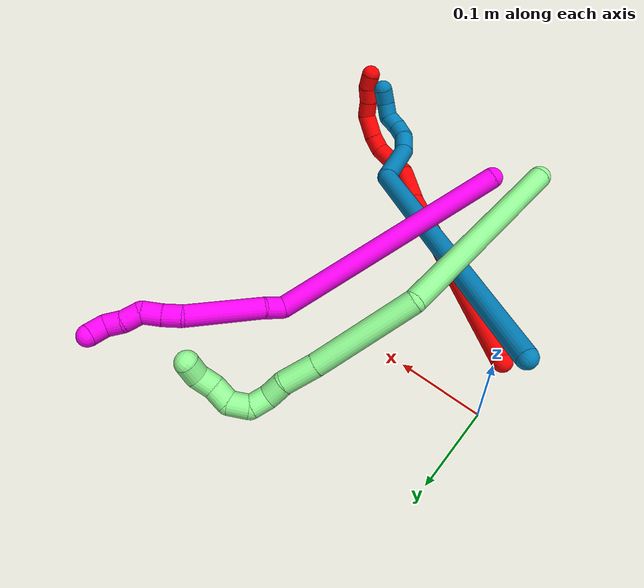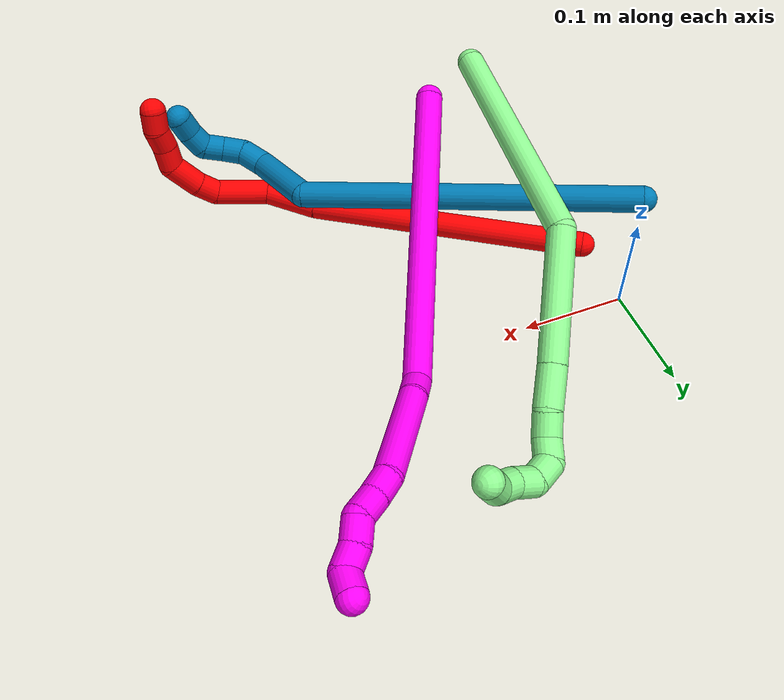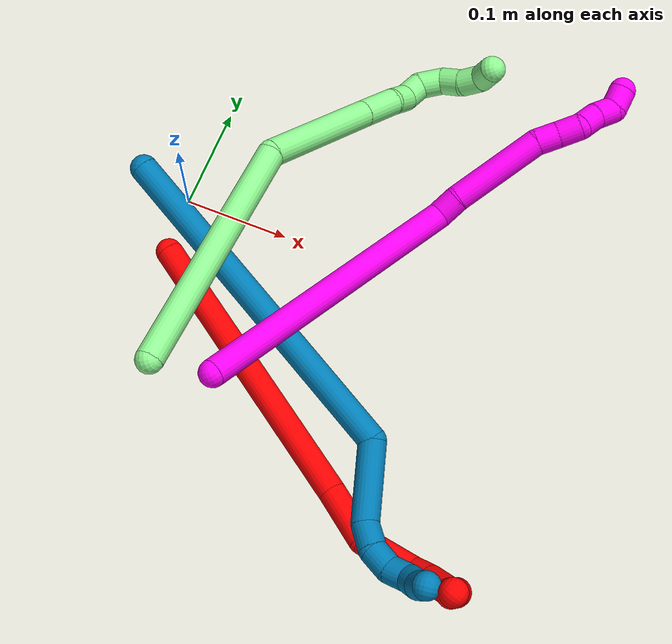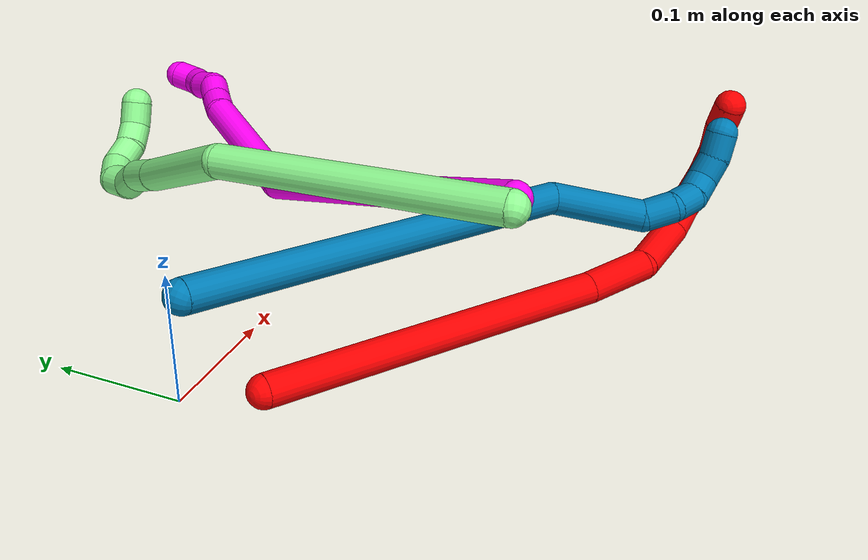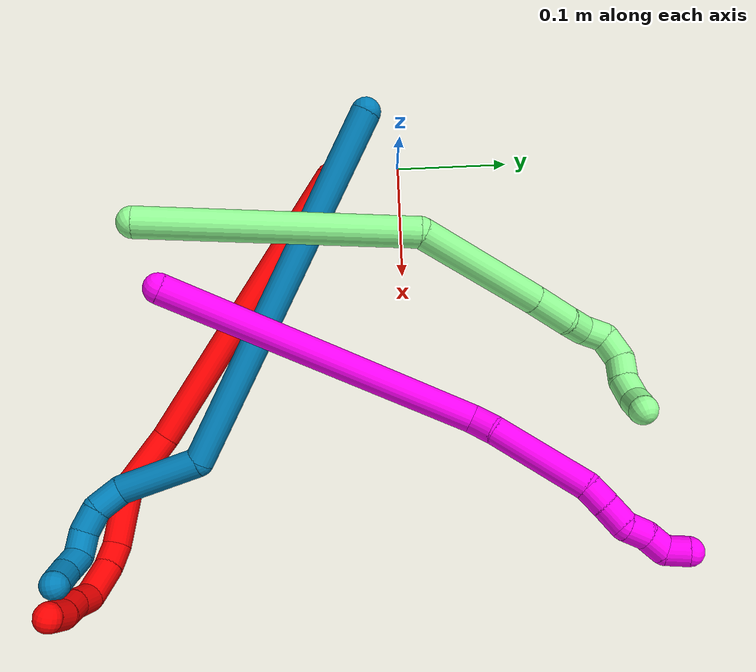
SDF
<sdf version="1.7">
 <world name="default">
  <model name="2">
   <static>0</static>
   <link name="2">
    <collision name="collision-cylinder-e_1_1_4">
     <pose>0.046267 0.005637 0.129977 -0.043342 0.341679 -0.007478</pose>
     <geometry><cylinder><radius>0.0125</radius><length>0.276161</length></cylinder></geometry>
     <surface>
      <friction><ode><mu>1.16</mu><mu2>1.16</mu2><slip1>0</slip1><slip2>0</slip2></ode></friction>
      <contact><ode><kp>1e+06</kp><kd>1</kd><max_vel>0</max_vel><min_depth>0.001</min_depth></ode></contact>
     </surface>
    </collision>
    <visual name="visual-cylinder-e_1_1_4">
     <pose>0.046267 0.005637 0.129977 -0.043342 0.341679 -0.007478</pose>
     <geometry><cylinder><radius>0.0125</radius><length>0.276161</length></cylinder></geometry>
     <material><ambient>1 0 0 1</ambient></material>
    </visual>
    <collision name="collision-cylinder-e_2_4_5">
     <pose>0.104665 0.009516 0.283589 0.074232 0.473089 0.017902</pose>
     <geometry><cylinder><radius>0.0125</radius><length>0.053252</length></cylinder></geometry>
     <surface>
      <friction><ode><mu>1.16</mu><mu2>1.16</mu2><slip1>0</slip1><slip2>0</slip2></ode></friction>
      <contact><ode><kp>1e+06</kp><kd>1</kd><max_vel>0</max_vel><min_depth>0.001</min_depth></ode></contact>
     </surface>
    </collision>
    <visual name="visual-cylinder-e_2_4_5">
     <pose>0.104665 0.009516 0.283589 0.074232 0.473089 0.017902</pose>
     <geometry><cylinder><radius>0.0125</radius><length>0.053252</length></cylinder></geometry>
     <material><ambient>1 0 0 1</ambient></material>
    </visual>
    <collision name="collision-cylinder-e_3_5_6">
     <pose>0.119041 -0.000747 0.332263 0.327464 0.084672 0.013997</pose>
     <geometry><cylinder><radius>0.0125</radius><length>0.053075</length></cylinder></geometry>
     <surface>
      <friction><ode><mu>1.16</mu><mu2>1.16</mu2><slip1>0</slip1><slip2>0</slip2></ode></friction>
      <contact><ode><kp>1e+06</kp><kd>1</kd><max_vel>0</max_vel><min_depth>0.001</min_depth></ode></contact>
     </surface>
    </collision>
    <visual name="visual-cylinder-e_3_5_6">
     <pose>0.119041 -0.000747 0.332263 0.327464 0.084672 0.013997</pose>
     <geometry><cylinder><radius>0.0125</radius><length>0.053075</length></cylinder></geometry>
     <material><ambient>1 0 0 1</ambient></material>
    </visual>
    <collision name="collision-cylinder-e_4_6_7">
     <pose>0.125128 -0.016306 0.364623 0.76668 0.361283 0.147042</pose>
     <geometry><cylinder><radius>0.0125</radius><length>0.021739</length></cylinder></geometry>
     <surface>
      <friction><ode><mu>1.16</mu><mu2>1.16</mu2><slip1>0</slip1><slip2>0</slip2></ode></friction>
      <contact><ode><kp>1e+06</kp><kd>1</kd><max_vel>0</max_vel><min_depth>0.001</min_depth></ode></contact>
     </surface>
    </collision>
    <visual name="visual-cylinder-e_4_6_7">
     <pose>0.125128 -0.016306 0.364623 0.76668 0.361283 0.147042</pose>
     <geometry><cylinder><radius>0.0125</radius><length>0.021739</length></cylinder></geometry>
     <material><ambient>1 0 0 1</ambient></material>
    </visual>
    <collision name="collision-cylinder-e_5_7_8">
     <pose>0.137245 -0.034048 0.381049 0.865352 0.532645 0.250675</pose>
     <geometry><cylinder><radius>0.0125</radius><length>0.032593</length></cylinder></geometry>
     <surface>
      <friction><ode><mu>1.16</mu><mu2>1.16</mu2><slip1>0</slip1><slip2>0</slip2></ode></friction>
      <contact><ode><kp>1e+06</kp><kd>1</kd><max_vel>0</max_vel><min_depth>0.001</min_depth></ode></contact>
     </surface>
    </collision>
    <visual name="visual-cylinder-e_5_7_8">
     <pose>0.137245 -0.034048 0.381049 0.865352 0.532645 0.250675</pose>
     <geometry><cylinder><radius>0.0125</radius><length>0.032593</length></cylinder></geometry>
     <material><ambient>1 0 0 1</ambient></material>
    </visual>
    <collision name="collision-cylinder-e_6_8_9">
     <pose>0.153248 -0.052638 0.389958 1.59524 0.774038 0.791276</pose>
     <geometry><cylinder><radius>0.0125</radius><length>0.022107</length></cylinder></geometry>
     <surface>
      <friction><ode><mu>1.16</mu><mu2>1.16</mu2><slip1>0</slip1><slip2>0</slip2></ode></friction>
      <contact><ode><kp>1e+06</kp><kd>1</kd><max_vel>0</max_vel><min_depth>0.001</min_depth></ode></contact>
     </surface>
    </collision>
    <visual name="visual-cylinder-e_6_8_9">
     <pose>0.153248 -0.052638 0.389958 1.59524 0.774038 0.791276</pose>
     <geometry><cylinder><radius>0.0125</radius><length>0.022107</length></cylinder></geometry>
     <material><ambient>1 0 0 1</ambient></material>
    </visual>
    <collision name="collision-cylinder-e_7_9_10">
     <pose>0.166589 -0.069429 0.390328 1.50752 0.562439 0.52957</pose>
     <geometry><cylinder><radius>0.0125</radius><length>0.021057</length></cylinder></geometry>
     <surface>
      <friction><ode><mu>1.16</mu><mu2>1.16</mu2><slip1>0</slip1><slip2>0</slip2></ode></friction>
      <contact><ode><kp>1e+06</kp><kd>1</kd><max_vel>0</max_vel><min_depth>0.001</min_depth></ode></contact>
     </surface>
    </collision>
    <visual name="visual-cylinder-e_7_9_10">
     <pose>0.166589 -0.069429 0.390328 1.50752 0.562439 0.52957</pose>
     <geometry><cylinder><radius>0.0125</radius><length>0.021057</length></cylinder></geometry>
     <material><ambient>1 0 0 1</ambient></material>
    </visual>
    <collision name="collision-cylinder-e_8_10_2">
     <pose>0.179356 -0.085121 0.389247 1.80785 0.796285 0.981454</pose>
     <geometry><cylinder><radius>0.0125</radius><length>0.020016</length></cylinder></geometry>
     <surface>
      <friction><ode><mu>1.16</mu><mu2>1.16</mu2><slip1>0</slip1><slip2>0</slip2></ode></friction>
      <contact><ode><kp>1e+06</kp><kd>1</kd><max_vel>0</max_vel><min_depth>0.001</min_depth></ode></contact>
     </surface>
    </collision>
    <visual name="visual-cylinder-e_8_10_2">
     <pose>0.179356 -0.085121 0.389247 1.80785 0.796285 0.981454</pose>
     <geometry><cylinder><radius>0.0125</radius><length>0.020016</length></cylinder></geometry>
     <material><ambient>1 0 0 1</ambient></material>
    </visual>
    <collision name="collision-sphere-2">
     <pose>0.186509 -0.091924 0.387604 0 -0 0</pose>
     <geometry><sphere><radius>0.0125</radius></sphere></geometry>
     <surface>
      <friction><ode><mu>1.16</mu><mu2>1.16</mu2><slip1>0</slip1><slip2>0</slip2></ode></friction>
      <contact><ode><kp>1e+06</kp><kd>1</kd><max_vel>0</max_vel><min_depth>0.001</min_depth></ode></contact>
     </surface>
    </collision>
    <visual name="visual-sphere-2">
     <pose>0.186509 -0.091924 0.387604 0 -0 0</pose>
     <geometry><sphere><radius>0.0125</radius></sphere></geometry>
     <material><ambient>1 0 0 1</ambient></material>
    </visual>
    <collision name="collision-sphere-10">
     <pose>0.172203 -0.078317 0.390891 0 -0 0</pose>
     <geometry><sphere><radius>0.0125</radius></sphere></geometry>
     <surface>
      <friction><ode><mu>1.16</mu><mu2>1.16</mu2><slip1>0</slip1><slip2>0</slip2></ode></friction>
      <contact><ode><kp>1e+06</kp><kd>1</kd><max_vel>0</max_vel><min_depth>0.001</min_depth></ode></contact>
     </surface>
    </collision>
    <visual name="visual-sphere-10">
     <pose>0.172203 -0.078317 0.390891 0 -0 0</pose>
     <geometry><sphere><radius>0.0125</radius></sphere></geometry>
     <material><ambient>1 0 0 1</ambient></material>
    </visual>
    <collision name="collision-sphere-9">
     <pose>0.160974 -0.06054 0.389765 0 -0 0</pose>
     <geometry><sphere><radius>0.0125</radius></sphere></geometry>
     <surface>
      <friction><ode><mu>1.16</mu><mu2>1.16</mu2><slip1>0</slip1><slip2>0</slip2></ode></friction>
      <contact><ode><kp>1e+06</kp><kd>1</kd><max_vel>0</max_vel><min_depth>0.001</min_depth></ode></contact>
     </surface>
    </collision>
    <visual name="visual-sphere-9">
     <pose>0.160974 -0.06054 0.389765 0 -0 0</pose>
     <geometry><sphere><radius>0.0125</radius></sphere></geometry>
     <material><ambient>1 0 0 1</ambient></material>
    </visual>
    <collision name="collision-sphere-4">
     <pose>0.092533 0.011274 0.259953 0 -0 0</pose>
     <geometry><sphere><radius>0.0125</radius></sphere></geometry>
     <surface>
      <friction><ode><mu>1.16</mu><mu2>1.16</mu2><slip1>0</slip1><slip2>0</slip2></ode></friction>
      <contact><ode><kp>1e+06</kp><kd>1</kd><max_vel>0</max_vel><min_depth>0.001</min_depth></ode></contact>
     </surface>
    </collision>
    <visual name="visual-sphere-4">
     <pose>0.092533 0.011274 0.259953 0 -0 0</pose>
     <geometry><sphere><radius>0.0125</radius></sphere></geometry>
     <material><ambient>1 0 0 1</ambient></material>
    </visual>
    <collision name="collision-sphere-1">
     <geometry><sphere><radius>0.0125</radius></sphere></geometry>
     <surface>
      <friction><ode><mu>1.16</mu><mu2>1.16</mu2><slip1>0</slip1><slip2>0</slip2></ode></friction>
      <contact><ode><kp>1e+06</kp><kd>1</kd><max_vel>0</max_vel><min_depth>0.001</min_depth></ode></contact>
     </surface>
    </collision>
    <visual name="visual-sphere-1">
     <geometry><sphere><radius>0.0125</radius></sphere></geometry>
     <material><ambient>1 0 0 1</ambient></material>
    </visual>
    <collision name="collision-sphere-8">
     <pose>0.145521 -0.044736 0.390151 0 -0 0</pose>
     <geometry><sphere><radius>0.0125</radius></sphere></geometry>
     <surface>
      <friction><ode><mu>1.16</mu><mu2>1.16</mu2><slip1>0</slip1><slip2>0</slip2></ode></friction>
      <contact><ode><kp>1e+06</kp><kd>1</kd><max_vel>0</max_vel><min_depth>0.001</min_depth></ode></contact>
     </surface>
    </collision>
    <visual name="visual-sphere-8">
     <pose>0.145521 -0.044736 0.390151 0 -0 0</pose>
     <geometry><sphere><radius>0.0125</radius></sphere></geometry>
     <material><ambient>1 0 0 1</ambient></material>
    </visual>
    <collision name="collision-sphere-5">
     <pose>0.116797 0.007758 0.307226 0 -0 0</pose>
     <geometry><sphere><radius>0.0125</radius></sphere></geometry>
     <surface>
      <friction><ode><mu>1.16</mu><mu2>1.16</mu2><slip1>0</slip1><slip2>0</slip2></ode></friction>
      <contact><ode><kp>1e+06</kp><kd>1</kd><max_vel>0</max_vel><min_depth>0.001</min_depth></ode></contact>
     </surface>
    </collision>
    <visual name="visual-sphere-5">
     <pose>0.116797 0.007758 0.307226 0 -0 0</pose>
     <geometry><sphere><radius>0.0125</radius></sphere></geometry>
     <material><ambient>1 0 0 1</ambient></material>
    </visual>
    <collision name="collision-sphere-6">
     <pose>0.121285 -0.009252 0.3573 0 -0 0</pose>
     <geometry><sphere><radius>0.0125</radius></sphere></geometry>
     <surface>
      <friction><ode><mu>1.16</mu><mu2>1.16</mu2><slip1>0</slip1><slip2>0</slip2></ode></friction>
      <contact><ode><kp>1e+06</kp><kd>1</kd><max_vel>0</max_vel><min_depth>0.001</min_depth></ode></contact>
     </surface>
    </collision>
    <visual name="visual-sphere-6">
     <pose>0.121285 -0.009252 0.3573 0 -0 0</pose>
     <geometry><sphere><radius>0.0125</radius></sphere></geometry>
     <material><ambient>1 0 0 1</ambient></material>
    </visual>
    <collision name="collision-sphere-7">
     <pose>0.12897 -0.02336 0.371946 0 -0 0</pose>
     <geometry><sphere><radius>0.0125</radius></sphere></geometry>
     <surface>
      <friction><ode><mu>1.16</mu><mu2>1.16</mu2><slip1>0</slip1><slip2>0</slip2></ode></friction>
      <contact><ode><kp>1e+06</kp><kd>1</kd><max_vel>0</max_vel><min_depth>0.001</min_depth></ode></contact>
     </surface>
    </collision>
    <visual name="visual-sphere-7">
     <pose>0.12897 -0.02336 0.371946 0 -0 0</pose>
     <geometry><sphere><radius>0.0125</radius></sphere></geometry>
     <material><ambient>1 0 0 1</ambient></material>
    </visual>
    <inertial>
     <pose>0.084696 -0.00754 0.227216 0 -0 0</pose>
     <mass>0.5</mass>
     <inertia>
      <ixx>0.001705</ixx>
      <ixy>0</ixy>
      <ixz>0</ixz>
      <iyy>0.001783</iyy>
      <iyz>0</iyz>
      <izz>-0.000634</izz>
     </inertia>
    </inertial>
   </link>
   <pose>0.010136 -0.062239 0.020366 -1.77056 -0.520572 -1.756</pose>
  </model>
  <model name="9">
   <static>0</static>
   <link name="9">
    <collision name="collision-cylinder-e_1_1_4">
     <pose>0.123806 -0.042574 0.092599 0.430943 0.882067 0.205901</pose>
     <geometry><cylinder><radius>0.0125</radius><length>0.320719</length></cylinder></geometry>
     <surface>
      <friction><ode><mu>1.16</mu><mu2>1.16</mu2><slip1>0</slip1><slip2>0</slip2></ode></friction>
      <contact><ode><kp>1e+06</kp><kd>1</kd><max_vel>0</max_vel><min_depth>0.001</min_depth></ode></contact>
     </surface>
    </collision>
    <visual name="visual-cylinder-e_1_1_4">
     <pose>0.123806 -0.042574 0.092599 0.430943 0.882067 0.205901</pose>
     <geometry><cylinder><radius>0.0125</radius><length>0.320719</length></cylinder></geometry>
     <material><ambient>0 0.490196 0.709804 1</ambient></material>
    </visual>
    <collision name="collision-cylinder-e_2_4_5">
     <pose>0.254922 -0.083877 0.220429 -0.036031 0.204447 -0.003697</pose>
     <geometry><cylinder><radius>0.0125</radius><length>0.072006</length></cylinder></geometry>
     <surface>
      <friction><ode><mu>1.16</mu><mu2>1.16</mu2><slip1>0</slip1><slip2>0</slip2></ode></friction>
      <contact><ode><kp>1e+06</kp><kd>1</kd><max_vel>0</max_vel><min_depth>0.001</min_depth></ode></contact>
     </surface>
    </collision>
    <visual name="visual-cylinder-e_2_4_5">
     <pose>0.254922 -0.083877 0.220429 -0.036031 0.204447 -0.003697</pose>
     <geometry><cylinder><radius>0.0125</radius><length>0.072006</length></cylinder></geometry>
     <material><ambient>0 0.490196 0.709804 1</ambient></material>
    </visual>
    <collision name="collision-cylinder-e_3_5_6">
     <pose>0.270082 -0.08011 0.265188 -0.256321 0.672854 -0.090074</pose>
     <geometry><cylinder><radius>0.0125</radius><length>0.025193</length></cylinder></geometry>
     <surface>
      <friction><ode><mu>1.16</mu><mu2>1.16</mu2><slip1>0</slip1><slip2>0</slip2></ode></friction>
      <contact><ode><kp>1e+06</kp><kd>1</kd><max_vel>0</max_vel><min_depth>0.001</min_depth></ode></contact>
     </surface>
    </collision>
    <visual name="visual-cylinder-e_3_5_6">
     <pose>0.270082 -0.08011 0.265188 -0.256321 0.672854 -0.090074</pose>
     <geometry><cylinder><radius>0.0125</radius><length>0.025193</length></cylinder></geometry>
     <material><ambient>0 0.490196 0.709804 1</ambient></material>
    </visual>
    <collision name="collision-cylinder-e_4_6_7">
     <pose>0.28703 -0.078588 0.280454 0.168399 1.00179 0.092346</pose>
     <geometry><cylinder><radius>0.0125</radius><length>0.0216</length></cylinder></geometry>
     <surface>
      <friction><ode><mu>1.16</mu><mu2>1.16</mu2><slip1>0</slip1><slip2>0</slip2></ode></friction>
      <contact><ode><kp>1e+06</kp><kd>1</kd><max_vel>0</max_vel><min_depth>0.001</min_depth></ode></contact>
     </surface>
    </collision>
    <visual name="visual-cylinder-e_4_6_7">
     <pose>0.28703 -0.078588 0.280454 0.168399 1.00179 0.092346</pose>
     <geometry><cylinder><radius>0.0125</radius><length>0.0216</length></cylinder></geometry>
     <material><ambient>0 0.490196 0.709804 1</ambient></material>
    </visual>
    <collision name="collision-cylinder-e_5_7_8">
     <pose>0.306251 -0.07948 0.287698 -0.055309 1.42273 -0.047674</pose>
     <geometry><cylinder><radius>0.0125</radius><length>0.020469</length></cylinder></geometry>
     <surface>
      <friction><ode><mu>1.16</mu><mu2>1.16</mu2><slip1>0</slip1><slip2>0</slip2></ode></friction>
      <contact><ode><kp>1e+06</kp><kd>1</kd><max_vel>0</max_vel><min_depth>0.001</min_depth></ode></contact>
     </surface>
    </collision>
    <visual name="visual-cylinder-e_5_7_8">
     <pose>0.306251 -0.07948 0.287698 -0.055309 1.42273 -0.047674</pose>
     <geometry><cylinder><radius>0.0125</radius><length>0.020469</length></cylinder></geometry>
     <material><ambient>0 0.490196 0.709804 1</ambient></material>
    </visual>
    <collision name="collision-cylinder-e_6_8_9">
     <pose>0.324048 -0.073107 0.290498 -1.36802 0.874187 -0.72794</pose>
     <geometry><cylinder><radius>0.0125</radius><length>0.020013</length></cylinder></geometry>
     <surface>
      <friction><ode><mu>1.16</mu><mu2>1.16</mu2><slip1>0</slip1><slip2>0</slip2></ode></friction>
      <contact><ode><kp>1e+06</kp><kd>1</kd><max_vel>0</max_vel><min_depth>0.001</min_depth></ode></contact>
     </surface>
    </collision>
    <visual name="visual-cylinder-e_6_8_9">
     <pose>0.324048 -0.073107 0.290498 -1.36802 0.874187 -0.72794</pose>
     <geometry><cylinder><radius>0.0125</radius><length>0.020013</length></cylinder></geometry>
     <material><ambient>0 0.490196 0.709804 1</ambient></material>
    </visual>
    <collision name="collision-cylinder-e_7_9_2">
     <pose>0.338532 -0.059584 0.290643 -1.72831 0.748923 -0.862855</pose>
     <geometry><cylinder><radius>0.0125</radius><length>0.020001</length></cylinder></geometry>
     <surface>
      <friction><ode><mu>1.16</mu><mu2>1.16</mu2><slip1>0</slip1><slip2>0</slip2></ode></friction>
      <contact><ode><kp>1e+06</kp><kd>1</kd><max_vel>0</max_vel><min_depth>0.001</min_depth></ode></contact>
     </surface>
    </collision>
    <visual name="visual-cylinder-e_7_9_2">
     <pose>0.338532 -0.059584 0.290643 -1.72831 0.748923 -0.862855</pose>
     <geometry><cylinder><radius>0.0125</radius><length>0.020001</length></cylinder></geometry>
     <material><ambient>0 0.490196 0.709804 1</ambient></material>
    </visual>
    <collision name="collision-sphere-2">
     <pose>0.345341 -0.05235 0.289494 0 -0 0</pose>
     <geometry><sphere><radius>0.0125</radius></sphere></geometry>
     <surface>
      <friction><ode><mu>1.16</mu><mu2>1.16</mu2><slip1>0</slip1><slip2>0</slip2></ode></friction>
      <contact><ode><kp>1e+06</kp><kd>1</kd><max_vel>0</max_vel><min_depth>0.001</min_depth></ode></contact>
     </surface>
    </collision>
    <visual name="visual-sphere-2">
     <pose>0.345341 -0.05235 0.289494 0 -0 0</pose>
     <geometry><sphere><radius>0.0125</radius></sphere></geometry>
     <material><ambient>0 0.490196 0.709804 1</ambient></material>
    </visual>
    <collision name="collision-sphere-9">
     <pose>0.331723 -0.066818 0.291791 0 -0 0</pose>
     <geometry><sphere><radius>0.0125</radius></sphere></geometry>
     <surface>
      <friction><ode><mu>1.16</mu><mu2>1.16</mu2><slip1>0</slip1><slip2>0</slip2></ode></friction>
      <contact><ode><kp>1e+06</kp><kd>1</kd><max_vel>0</max_vel><min_depth>0.001</min_depth></ode></contact>
     </surface>
    </collision>
    <visual name="visual-sphere-9">
     <pose>0.331723 -0.066818 0.291791 0 -0 0</pose>
     <geometry><sphere><radius>0.0125</radius></sphere></geometry>
     <material><ambient>0 0.490196 0.709804 1</ambient></material>
    </visual>
    <collision name="collision-sphere-4">
     <pose>0.247612 -0.085147 0.185199 0 -0 0</pose>
     <geometry><sphere><radius>0.0125</radius></sphere></geometry>
     <surface>
      <friction><ode><mu>1.16</mu><mu2>1.16</mu2><slip1>0</slip1><slip2>0</slip2></ode></friction>
      <contact><ode><kp>1e+06</kp><kd>1</kd><max_vel>0</max_vel><min_depth>0.001</min_depth></ode></contact>
     </surface>
    </collision>
    <visual name="visual-sphere-4">
     <pose>0.247612 -0.085147 0.185199 0 -0 0</pose>
     <geometry><sphere><radius>0.0125</radius></sphere></geometry>
     <material><ambient>0 0.490196 0.709804 1</ambient></material>
    </visual>
    <collision name="collision-sphere-1">
     <geometry><sphere><radius>0.0125</radius></sphere></geometry>
     <surface>
      <friction><ode><mu>1.16</mu><mu2>1.16</mu2><slip1>0</slip1><slip2>0</slip2></ode></friction>
      <contact><ode><kp>1e+06</kp><kd>1</kd><max_vel>0</max_vel><min_depth>0.001</min_depth></ode></contact>
     </surface>
    </collision>
    <visual name="visual-sphere-1">
     <geometry><sphere><radius>0.0125</radius></sphere></geometry>
     <material><ambient>0 0.490196 0.709804 1</ambient></material>
    </visual>
    <collision name="collision-sphere-8">
     <pose>0.316373 -0.079396 0.289205 0 -0 0</pose>
     <geometry><sphere><radius>0.0125</radius></sphere></geometry>
     <surface>
      <friction><ode><mu>1.16</mu><mu2>1.16</mu2><slip1>0</slip1><slip2>0</slip2></ode></friction>
      <contact><ode><kp>1e+06</kp><kd>1</kd><max_vel>0</max_vel><min_depth>0.001</min_depth></ode></contact>
     </surface>
    </collision>
    <visual name="visual-sphere-8">
     <pose>0.316373 -0.079396 0.289205 0 -0 0</pose>
     <geometry><sphere><radius>0.0125</radius></sphere></geometry>
     <material><ambient>0 0.490196 0.709804 1</ambient></material>
    </visual>
    <collision name="collision-sphere-5">
     <pose>0.262231 -0.082607 0.255659 0 -0 0</pose>
     <geometry><sphere><radius>0.0125</radius></sphere></geometry>
     <surface>
      <friction><ode><mu>1.16</mu><mu2>1.16</mu2><slip1>0</slip1><slip2>0</slip2></ode></friction>
      <contact><ode><kp>1e+06</kp><kd>1</kd><max_vel>0</max_vel><min_depth>0.001</min_depth></ode></contact>
     </surface>
    </collision>
    <visual name="visual-sphere-5">
     <pose>0.262231 -0.082607 0.255659 0 -0 0</pose>
     <geometry><sphere><radius>0.0125</radius></sphere></geometry>
     <material><ambient>0 0.490196 0.709804 1</ambient></material>
    </visual>
    <collision name="collision-sphere-6">
     <pose>0.277932 -0.077613 0.274717 0 -0 0</pose>
     <geometry><sphere><radius>0.0125</radius></sphere></geometry>
     <surface>
      <friction><ode><mu>1.16</mu><mu2>1.16</mu2><slip1>0</slip1><slip2>0</slip2></ode></friction>
      <contact><ode><kp>1e+06</kp><kd>1</kd><max_vel>0</max_vel><min_depth>0.001</min_depth></ode></contact>
     </surface>
    </collision>
    <visual name="visual-sphere-6">
     <pose>0.277932 -0.077613 0.274717 0 -0 0</pose>
     <geometry><sphere><radius>0.0125</radius></sphere></geometry>
     <material><ambient>0 0.490196 0.709804 1</ambient></material>
    </visual>
    <collision name="collision-sphere-7">
     <pose>0.296128 -0.079563 0.28619 0 -0 0</pose>
     <geometry><sphere><radius>0.0125</radius></sphere></geometry>
     <surface>
      <friction><ode><mu>1.16</mu><mu2>1.16</mu2><slip1>0</slip1><slip2>0</slip2></ode></friction>
      <contact><ode><kp>1e+06</kp><kd>1</kd><max_vel>0</max_vel><min_depth>0.001</min_depth></ode></contact>
     </surface>
    </collision>
    <visual name="visual-sphere-7">
     <pose>0.296128 -0.079563 0.28619 0 -0 0</pose>
     <geometry><sphere><radius>0.0125</radius></sphere></geometry>
     <material><ambient>0 0.490196 0.709804 1</ambient></material>
    </visual>
    <inertial>
     <pose>0.181183 -0.055382 0.15165 0 -0 0</pose>
     <mass>0.5</mass>
     <inertia>
      <ixx>0.00214</ixx>
      <ixy>0</ixy>
      <ixz>0</ixz>
      <iyy>0.003032</iyy>
      <iyz>0</iyz>
      <izz>-0.001393</izz>
     </inertia>
    </inertial>
   </link>
   <pose>-0.020995 -0.026947 0.103091 1.87149 -0.392721 0.000605</pose>
  </model>
  <model name="10">
   <static>0</static>
   <link name="10">
    <collision name="collision-cylinder-e_1_1_4">
     <pose>0.090521 0.10696 0.022066 -1.36735 0.69209 -0.571451</pose>
     <geometry><cylinder><radius>0.0125</radius><length>0.283701</length></cylinder></geometry>
     <surface>
      <friction><ode><mu>1.16</mu><mu2>1.16</mu2><slip1>0</slip1><slip2>0</slip2></ode></friction>
      <contact><ode><kp>1e+06</kp><kd>1</kd><max_vel>0</max_vel><min_depth>0.001</min_depth></ode></contact>
     </surface>
    </collision>
    <visual name="visual-cylinder-e_1_1_4">
     <pose>0.090521 0.10696 0.022066 -1.36735 0.69209 -0.571451</pose>
     <geometry><cylinder><radius>0.0125</radius><length>0.283701</length></cylinder></geometry>
     <material><ambient>1 0 0.964706 1</ambient></material>
    </visual>
    <collision name="collision-cylinder-e_2_4_5">
     <pose>0.182243 0.225189 0.040896 -1.8504 0.101997 -0.135314</pose>
     <geometry><cylinder><radius>0.0125</radius><length>0.023571</length></cylinder></geometry>
     <surface>
      <friction><ode><mu>1.16</mu><mu2>1.16</mu2><slip1>0</slip1><slip2>0</slip2></ode></friction>
      <contact><ode><kp>1e+06</kp><kd>1</kd><max_vel>0</max_vel><min_depth>0.001</min_depth></ode></contact>
     </surface>
    </collision>
    <visual name="visual-cylinder-e_2_4_5">
     <pose>0.182243 0.225189 0.040896 -1.8504 0.101997 -0.135314</pose>
     <geometry><cylinder><radius>0.0125</radius><length>0.023571</length></cylinder></geometry>
     <material><ambient>1 0 0.964706 1</ambient></material>
    </visual>
    <collision name="collision-cylinder-e_3_5_6">
     <pose>0.192579 0.27954 0.033392 -1.66956 0.207971 -0.229416</pose>
     <geometry><cylinder><radius>0.0125</radius><length>0.088492</length></cylinder></geometry>
     <surface>
      <friction><ode><mu>1.16</mu><mu2>1.16</mu2><slip1>0</slip1><slip2>0</slip2></ode></friction>
      <contact><ode><kp>1e+06</kp><kd>1</kd><max_vel>0</max_vel><min_depth>0.001</min_depth></ode></contact>
     </surface>
    </collision>
    <visual name="visual-cylinder-e_3_5_6">
     <pose>0.192579 0.27954 0.033392 -1.66956 0.207971 -0.229416</pose>
     <geometry><cylinder><radius>0.0125</radius><length>0.088492</length></cylinder></geometry>
     <material><ambient>1 0 0.964706 1</ambient></material>
    </visual>
    <collision name="collision-cylinder-e_4_6_7">
     <pose>0.202611 0.333136 0.030765 -1.41587 0.084073 -0.071974</pose>
     <geometry><cylinder><radius>0.0125</radius><length>0.02136</length></cylinder></geometry>
     <surface>
      <friction><ode><mu>1.16</mu><mu2>1.16</mu2><slip1>0</slip1><slip2>0</slip2></ode></friction>
      <contact><ode><kp>1e+06</kp><kd>1</kd><max_vel>0</max_vel><min_depth>0.001</min_depth></ode></contact>
     </surface>
    </collision>
    <visual name="visual-cylinder-e_4_6_7">
     <pose>0.202611 0.333136 0.030765 -1.41587 0.084073 -0.071974</pose>
     <geometry><cylinder><radius>0.0125</radius><length>0.02136</length></cylinder></geometry>
     <material><ambient>1 0 0.964706 1</ambient></material>
    </visual>
    <collision name="collision-cylinder-e_5_7_8">
     <pose>0.203327 0.354681 0.033467 -1.47502 -0.016361 0.014864</pose>
     <geometry><cylinder><radius>0.0125</radius><length>0.022164</length></cylinder></geometry>
     <surface>
      <friction><ode><mu>1.16</mu><mu2>1.16</mu2><slip1>0</slip1><slip2>0</slip2></ode></friction>
      <contact><ode><kp>1e+06</kp><kd>1</kd><max_vel>0</max_vel><min_depth>0.001</min_depth></ode></contact>
     </surface>
    </collision>
    <visual name="visual-cylinder-e_5_7_8">
     <pose>0.203327 0.354681 0.033467 -1.47502 -0.016361 0.014864</pose>
     <geometry><cylinder><radius>0.0125</radius><length>0.022164</length></cylinder></geometry>
     <material><ambient>1 0 0.964706 1</ambient></material>
    </visual>
    <collision name="collision-cylinder-e_6_8_9">
     <pose>0.209117 0.373886 0.035715 -1.42646 0.625892 -0.545919</pose>
     <geometry><cylinder><radius>0.0125</radius><length>0.020387</length></cylinder></geometry>
     <surface>
      <friction><ode><mu>1.16</mu><mu2>1.16</mu2><slip1>0</slip1><slip2>0</slip2></ode></friction>
      <contact><ode><kp>1e+06</kp><kd>1</kd><max_vel>0</max_vel><min_depth>0.001</min_depth></ode></contact>
     </surface>
    </collision>
    <visual name="visual-cylinder-e_6_8_9">
     <pose>0.209117 0.373886 0.035715 -1.42646 0.625892 -0.545919</pose>
     <geometry><cylinder><radius>0.0125</radius><length>0.020387</length></cylinder></geometry>
     <material><ambient>1 0 0.964706 1</ambient></material>
    </visual>
    <collision name="collision-cylinder-e_7_9_10">
     <pose>0.218636 0.391206 0.039409 -1.3033 0.358067 -0.274361</pose>
     <geometry><cylinder><radius>0.0125</radius><length>0.020247</length></cylinder></geometry>
     <surface>
      <friction><ode><mu>1.16</mu><mu2>1.16</mu2><slip1>0</slip1><slip2>0</slip2></ode></friction>
      <contact><ode><kp>1e+06</kp><kd>1</kd><max_vel>0</max_vel><min_depth>0.001</min_depth></ode></contact>
     </surface>
    </collision>
    <visual name="visual-cylinder-e_7_9_10">
     <pose>0.218636 0.391206 0.039409 -1.3033 0.358067 -0.274361</pose>
     <geometry><cylinder><radius>0.0125</radius><length>0.020247</length></cylinder></geometry>
     <material><ambient>1 0 0.964706 1</ambient></material>
    </visual>
    <collision name="collision-cylinder-e_8_10_2">
     <pose>0.227656 0.407718 0.037847 -2.07527 0.576388 -0.930985</pose>
     <geometry><cylinder><radius>0.0125</radius><length>0.020078</length></cylinder></geometry>
     <surface>
      <friction><ode><mu>1.16</mu><mu2>1.16</mu2><slip1>0</slip1><slip2>0</slip2></ode></friction>
      <contact><ode><kp>1e+06</kp><kd>1</kd><max_vel>0</max_vel><min_depth>0.001</min_depth></ode></contact>
     </surface>
    </collision>
    <visual name="visual-cylinder-e_8_10_2">
     <pose>0.227656 0.407718 0.037847 -2.07527 0.576388 -0.930985</pose>
     <geometry><cylinder><radius>0.0125</radius><length>0.020078</length></cylinder></geometry>
     <material><ambient>1 0 0.964706 1</ambient></material>
    </visual>
    <collision name="collision-sphere-2">
     <pose>0.233127 0.415087 0.033778 0 -0 0</pose>
     <geometry><sphere><radius>0.0125</radius></sphere></geometry>
     <surface>
      <friction><ode><mu>1.16</mu><mu2>1.16</mu2><slip1>0</slip1><slip2>0</slip2></ode></friction>
      <contact><ode><kp>1e+06</kp><kd>1</kd><max_vel>0</max_vel><min_depth>0.001</min_depth></ode></contact>
     </surface>
    </collision>
    <visual name="visual-sphere-2">
     <pose>0.233127 0.415087 0.033778 0 -0 0</pose>
     <geometry><sphere><radius>0.0125</radius></sphere></geometry>
     <material><ambient>1 0 0.964706 1</ambient></material>
    </visual>
    <collision name="collision-sphere-10">
     <pose>0.222184 0.40035 0.041915 0 -0 0</pose>
     <geometry><sphere><radius>0.0125</radius></sphere></geometry>
     <surface>
      <friction><ode><mu>1.16</mu><mu2>1.16</mu2><slip1>0</slip1><slip2>0</slip2></ode></friction>
      <contact><ode><kp>1e+06</kp><kd>1</kd><max_vel>0</max_vel><min_depth>0.001</min_depth></ode></contact>
     </surface>
    </collision>
    <visual name="visual-sphere-10">
     <pose>0.222184 0.40035 0.041915 0 -0 0</pose>
     <geometry><sphere><radius>0.0125</radius></sphere></geometry>
     <material><ambient>1 0 0.964706 1</ambient></material>
    </visual>
    <collision name="collision-sphere-9">
     <pose>0.215088 0.382061 0.036903 0 -0 0</pose>
     <geometry><sphere><radius>0.0125</radius></sphere></geometry>
     <surface>
      <friction><ode><mu>1.16</mu><mu2>1.16</mu2><slip1>0</slip1><slip2>0</slip2></ode></friction>
      <contact><ode><kp>1e+06</kp><kd>1</kd><max_vel>0</max_vel><min_depth>0.001</min_depth></ode></contact>
     </surface>
    </collision>
    <visual name="visual-sphere-9">
     <pose>0.215088 0.382061 0.036903 0 -0 0</pose>
     <geometry><sphere><radius>0.0125</radius></sphere></geometry>
     <material><ambient>1 0 0.964706 1</ambient></material>
    </visual>
    <collision name="collision-sphere-4">
     <pose>0.181043 0.21392 0.044132 0 -0 0</pose>
     <geometry><sphere><radius>0.0125</radius></sphere></geometry>
     <surface>
      <friction><ode><mu>1.16</mu><mu2>1.16</mu2><slip1>0</slip1><slip2>0</slip2></ode></friction>
      <contact><ode><kp>1e+06</kp><kd>1</kd><max_vel>0</max_vel><min_depth>0.001</min_depth></ode></contact>
     </surface>
    </collision>
    <visual name="visual-sphere-4">
     <pose>0.181043 0.21392 0.044132 0 -0 0</pose>
     <geometry><sphere><radius>0.0125</radius></sphere></geometry>
     <material><ambient>1 0 0.964706 1</ambient></material>
    </visual>
    <collision name="collision-sphere-1">
     <geometry><sphere><radius>0.0125</radius></sphere></geometry>
     <surface>
      <friction><ode><mu>1.16</mu><mu2>1.16</mu2><slip1>0</slip1><slip2>0</slip2></ode></friction>
      <contact><ode><kp>1e+06</kp><kd>1</kd><max_vel>0</max_vel><min_depth>0.001</min_depth></ode></contact>
     </surface>
    </collision>
    <visual name="visual-sphere-1">
     <geometry><sphere><radius>0.0125</radius></sphere></geometry>
     <material><ambient>1 0 0.964706 1</ambient></material>
    </visual>
    <collision name="collision-sphere-8">
     <pose>0.203145 0.365711 0.034527 0 -0 0</pose>
     <geometry><sphere><radius>0.0125</radius></sphere></geometry>
     <surface>
      <friction><ode><mu>1.16</mu><mu2>1.16</mu2><slip1>0</slip1><slip2>0</slip2></ode></friction>
      <contact><ode><kp>1e+06</kp><kd>1</kd><max_vel>0</max_vel><min_depth>0.001</min_depth></ode></contact>
     </surface>
    </collision>
    <visual name="visual-sphere-8">
     <pose>0.203145 0.365711 0.034527 0 -0 0</pose>
     <geometry><sphere><radius>0.0125</radius></sphere></geometry>
     <material><ambient>1 0 0.964706 1</ambient></material>
    </visual>
    <collision name="collision-sphere-5">
     <pose>0.183443 0.236458 0.03766 0 -0 0</pose>
     <geometry><sphere><radius>0.0125</radius></sphere></geometry>
     <surface>
      <friction><ode><mu>1.16</mu><mu2>1.16</mu2><slip1>0</slip1><slip2>0</slip2></ode></friction>
      <contact><ode><kp>1e+06</kp><kd>1</kd><max_vel>0</max_vel><min_depth>0.001</min_depth></ode></contact>
     </surface>
    </collision>
    <visual name="visual-sphere-5">
     <pose>0.183443 0.236458 0.03766 0 -0 0</pose>
     <geometry><sphere><radius>0.0125</radius></sphere></geometry>
     <material><ambient>1 0 0.964706 1</ambient></material>
    </visual>
    <collision name="collision-sphere-6">
     <pose>0.201714 0.322621 0.029123 0 -0 0</pose>
     <geometry><sphere><radius>0.0125</radius></sphere></geometry>
     <surface>
      <friction><ode><mu>1.16</mu><mu2>1.16</mu2><slip1>0</slip1><slip2>0</slip2></ode></friction>
      <contact><ode><kp>1e+06</kp><kd>1</kd><max_vel>0</max_vel><min_depth>0.001</min_depth></ode></contact>
     </surface>
    </collision>
    <visual name="visual-sphere-6">
     <pose>0.201714 0.322621 0.029123 0 -0 0</pose>
     <geometry><sphere><radius>0.0125</radius></sphere></geometry>
     <material><ambient>1 0 0.964706 1</ambient></material>
    </visual>
    <collision name="collision-sphere-7">
     <pose>0.203508 0.343651 0.032407 0 -0 0</pose>
     <geometry><sphere><radius>0.0125</radius></sphere></geometry>
     <surface>
      <friction><ode><mu>1.16</mu><mu2>1.16</mu2><slip1>0</slip1><slip2>0</slip2></ode></friction>
      <contact><ode><kp>1e+06</kp><kd>1</kd><max_vel>0</max_vel><min_depth>0.001</min_depth></ode></contact>
     </surface>
    </collision>
    <visual name="visual-sphere-7">
     <pose>0.203508 0.343651 0.032407 0 -0 0</pose>
     <geometry><sphere><radius>0.0125</radius></sphere></geometry>
     <material><ambient>1 0 0.964706 1</ambient></material>
    </visual>
    <inertial>
     <pose>0.138227 0.198192 0.027728 0 -0 0</pose>
     <mass>0.5</mass>
     <inertia>
      <ixx>0.000512</ixx>
      <ixy>0</ixy>
      <ixz>0</ixz>
      <iyy>0.00019</iyy>
      <iyz>0</iyz>
      <izz>-0.002746</izz>
     </inertia>
    </inertial>
   </link>
   <pose>0.123058 -0.193504 0.138361 2.77381 0.692764 2.0737</pose>
  </model>
  <model name="13">
   <static>0</static>
   <link name="13">
    <collision name="collision-cylinder-e_1_1_4">
     <pose>0.051507 0.093481 -0.027323 -1.85516 0.486469 -0.639407</pose>
     <geometry><cylinder><radius>0.0125</radius><length>0.220347</length></cylinder></geometry>
     <surface>
      <friction><ode><mu>1.16</mu><mu2>1.16</mu2><slip1>0</slip1><slip2>0</slip2></ode></friction>
      <contact><ode><kp>1e+06</kp><kd>1</kd><max_vel>0</max_vel><min_depth>0.001</min_depth></ode></contact>
     </surface>
    </collision>
    <visual name="visual-cylinder-e_1_1_4">
     <pose>0.051507 0.093481 -0.027323 -1.85516 0.486469 -0.639407</pose>
     <geometry><cylinder><radius>0.0125</radius><length>0.220347</length></cylinder></geometry>
     <material><ambient>0.564706 0.984314 0.572549 1</ambient></material>
    </visual>
    <collision name="collision-cylinder-e_2_4_5">
     <pose>0.098983 0.24252 -0.071378 -1.86332 -0.069352 0.093285</pose>
     <geometry><cylinder><radius>0.0125</radius><length>0.116326</length></cylinder></geometry>
     <surface>
      <friction><ode><mu>1.16</mu><mu2>1.16</mu2><slip1>0</slip1><slip2>0</slip2></ode></friction>
      <contact><ode><kp>1e+06</kp><kd>1</kd><max_vel>0</max_vel><min_depth>0.001</min_depth></ode></contact>
     </surface>
    </collision>
    <visual name="visual-cylinder-e_2_4_5">
     <pose>0.098983 0.24252 -0.071378 -1.86332 -0.069352 0.093285</pose>
     <geometry><cylinder><radius>0.0125</radius><length>0.116326</length></cylinder></geometry>
     <material><ambient>0.564706 0.984314 0.572549 1</ambient></material>
    </visual>
    <collision name="collision-cylinder-e_3_5_6">
     <pose>0.093763 0.315325 -0.094636 -1.93253 -0.064403 0.093193</pose>
     <geometry><cylinder><radius>0.0125</radius><length>0.036957</length></cylinder></geometry>
     <surface>
      <friction><ode><mu>1.16</mu><mu2>1.16</mu2><slip1>0</slip1><slip2>0</slip2></ode></friction>
      <contact><ode><kp>1e+06</kp><kd>1</kd><max_vel>0</max_vel><min_depth>0.001</min_depth></ode></contact>
     </surface>
    </collision>
    <visual name="visual-cylinder-e_3_5_6">
     <pose>0.093763 0.315325 -0.094636 -1.93253 -0.064403 0.093193</pose>
     <geometry><cylinder><radius>0.0125</radius><length>0.036957</length></cylinder></geometry>
     <material><ambient>0.564706 0.984314 0.572549 1</ambient></material>
    </visual>
    <collision name="collision-cylinder-e_4_6_7">
     <pose>0.090729 0.343418 -0.102183 -1.66468 -0.16774 0.184187</pose>
     <geometry><cylinder><radius>0.0125</radius><length>0.022099</length></cylinder></geometry>
     <surface>
      <friction><ode><mu>1.16</mu><mu2>1.16</mu2><slip1>0</slip1><slip2>0</slip2></ode></friction>
      <contact><ode><kp>1e+06</kp><kd>1</kd><max_vel>0</max_vel><min_depth>0.001</min_depth></ode></contact>
     </surface>
    </collision>
    <visual name="visual-cylinder-e_4_6_7">
     <pose>0.090729 0.343418 -0.102183 -1.66468 -0.16774 0.184187</pose>
     <geometry><cylinder><radius>0.0125</radius><length>0.022099</length></cylinder></geometry>
     <material><ambient>0.564706 0.984314 0.572549 1</ambient></material>
    </visual>
    <collision name="collision-cylinder-e_5_7_8">
     <pose>0.091094 0.363173 -0.107452 -2.01573 0.220202 -0.34685</pose>
     <geometry><cylinder><radius>0.0125</radius><length>0.020227</length></cylinder></geometry>
     <surface>
      <friction><ode><mu>1.16</mu><mu2>1.16</mu2><slip1>0</slip1><slip2>0</slip2></ode></friction>
      <contact><ode><kp>1e+06</kp><kd>1</kd><max_vel>0</max_vel><min_depth>0.001</min_depth></ode></contact>
     </surface>
    </collision>
    <visual name="visual-cylinder-e_5_7_8">
     <pose>0.091094 0.363173 -0.107452 -2.01573 0.220202 -0.34685</pose>
     <geometry><cylinder><radius>0.0125</radius><length>0.020227</length></cylinder></geometry>
     <material><ambient>0.564706 0.984314 0.572549 1</ambient></material>
    </visual>
    <collision name="collision-cylinder-e_6_8_9">
     <pose>0.091751 0.377342 -0.121428 -2.64591 -0.13942 0.538469</pose>
     <geometry><cylinder><radius>0.0125</radius><length>0.022335</length></cylinder></geometry>
     <surface>
      <friction><ode><mu>1.16</mu><mu2>1.16</mu2><slip1>0</slip1><slip2>0</slip2></ode></friction>
      <contact><ode><kp>1e+06</kp><kd>1</kd><max_vel>0</max_vel><min_depth>0.001</min_depth></ode></contact>
     </surface>
    </collision>
    <visual name="visual-cylinder-e_6_8_9">
     <pose>0.091751 0.377342 -0.121428 -2.64591 -0.13942 0.538469</pose>
     <geometry><cylinder><radius>0.0125</radius><length>0.022335</length></cylinder></geometry>
     <material><ambient>0.564706 0.984314 0.572549 1</ambient></material>
    </visual>
    <collision name="collision-cylinder-e_7_9_10">
     <pose>0.087312 0.381292 -0.141316 3.01338 -0.274743 -2.27211</pose>
     <geometry><cylinder><radius>0.0125</radius><length>0.021285</length></cylinder></geometry>
     <surface>
      <friction><ode><mu>1.16</mu><mu2>1.16</mu2><slip1>0</slip1><slip2>0</slip2></ode></friction>
      <contact><ode><kp>1e+06</kp><kd>1</kd><max_vel>0</max_vel><min_depth>0.001</min_depth></ode></contact>
     </surface>
    </collision>
    <visual name="visual-cylinder-e_7_9_10">
     <pose>0.087312 0.381292 -0.141316 3.01338 -0.274743 -2.27211</pose>
     <geometry><cylinder><radius>0.0125</radius><length>0.021285</length></cylinder></geometry>
     <material><ambient>0.564706 0.984314 0.572549 1</ambient></material>
    </visual>
    <collision name="collision-cylinder-e_8_10_11">
     <pose>0.084258 0.380418 -0.161581 -3.09852 -0.016473 0.73048</pose>
     <geometry><cylinder><radius>0.0125</radius><length>0.020232</length></cylinder></geometry>
     <surface>
      <friction><ode><mu>1.16</mu><mu2>1.16</mu2><slip1>0</slip1><slip2>0</slip2></ode></friction>
      <contact><ode><kp>1e+06</kp><kd>1</kd><max_vel>0</max_vel><min_depth>0.001</min_depth></ode></contact>
     </surface>
    </collision>
    <visual name="visual-cylinder-e_8_10_11">
     <pose>0.084258 0.380418 -0.161581 -3.09852 -0.016473 0.73048</pose>
     <geometry><cylinder><radius>0.0125</radius><length>0.020232</length></cylinder></geometry>
     <material><ambient>0.564706 0.984314 0.572549 1</ambient></material>
    </visual>
    <collision name="collision-cylinder-e_9_11_2">
     <pose>0.087635 0.377037 -0.180334 2.72599 0.358696 1.42038</pose>
     <geometry><cylinder><radius>0.0125</radius><length>0.020192</length></cylinder></geometry>
     <surface>
      <friction><ode><mu>1.16</mu><mu2>1.16</mu2><slip1>0</slip1><slip2>0</slip2></ode></friction>
      <contact><ode><kp>1e+06</kp><kd>1</kd><max_vel>0</max_vel><min_depth>0.001</min_depth></ode></contact>
     </surface>
    </collision>
    <visual name="visual-cylinder-e_9_11_2">
     <pose>0.087635 0.377037 -0.180334 2.72599 0.358696 1.42038</pose>
     <geometry><cylinder><radius>0.0125</radius><length>0.020192</length></cylinder></geometry>
     <material><ambient>0.564706 0.984314 0.572549 1</ambient></material>
    </visual>
    <collision name="collision-sphere-2">
     <pose>0.091179 0.37322 -0.188983 0 -0 0</pose>
     <geometry><sphere><radius>0.0125</radius></sphere></geometry>
     <surface>
      <friction><ode><mu>1.16</mu><mu2>1.16</mu2><slip1>0</slip1><slip2>0</slip2></ode></friction>
      <contact><ode><kp>1e+06</kp><kd>1</kd><max_vel>0</max_vel><min_depth>0.001</min_depth></ode></contact>
     </surface>
    </collision>
    <visual name="visual-sphere-2">
     <pose>0.091179 0.37322 -0.188983 0 -0 0</pose>
     <geometry><sphere><radius>0.0125</radius></sphere></geometry>
     <material><ambient>0.564706 0.984314 0.572549 1</ambient></material>
    </visual>
    <collision name="collision-sphere-11">
     <pose>0.084091 0.380853 -0.171686 0 -0 0</pose>
     <geometry><sphere><radius>0.0125</radius></sphere></geometry>
     <surface>
      <friction><ode><mu>1.16</mu><mu2>1.16</mu2><slip1>0</slip1><slip2>0</slip2></ode></friction>
      <contact><ode><kp>1e+06</kp><kd>1</kd><max_vel>0</max_vel><min_depth>0.001</min_depth></ode></contact>
     </surface>
    </collision>
    <visual name="visual-sphere-11">
     <pose>0.084091 0.380853 -0.171686 0 -0 0</pose>
     <geometry><sphere><radius>0.0125</radius></sphere></geometry>
     <material><ambient>0.564706 0.984314 0.572549 1</ambient></material>
    </visual>
    <collision name="collision-sphere-10">
     <pose>0.084424 0.379982 -0.151475 0 -0 0</pose>
     <geometry><sphere><radius>0.0125</radius></sphere></geometry>
     <surface>
      <friction><ode><mu>1.16</mu><mu2>1.16</mu2><slip1>0</slip1><slip2>0</slip2></ode></friction>
      <contact><ode><kp>1e+06</kp><kd>1</kd><max_vel>0</max_vel><min_depth>0.001</min_depth></ode></contact>
     </surface>
    </collision>
    <visual name="visual-sphere-10">
     <pose>0.084424 0.379982 -0.151475 0 -0 0</pose>
     <geometry><sphere><radius>0.0125</radius></sphere></geometry>
     <material><ambient>0.564706 0.984314 0.572549 1</ambient></material>
    </visual>
    <collision name="collision-sphere-9">
     <pose>0.090199 0.382602 -0.131157 0 -0 0</pose>
     <geometry><sphere><radius>0.0125</radius></sphere></geometry>
     <surface>
      <friction><ode><mu>1.16</mu><mu2>1.16</mu2><slip1>0</slip1><slip2>0</slip2></ode></friction>
      <contact><ode><kp>1e+06</kp><kd>1</kd><max_vel>0</max_vel><min_depth>0.001</min_depth></ode></contact>
     </surface>
    </collision>
    <visual name="visual-sphere-9">
     <pose>0.090199 0.382602 -0.131157 0 -0 0</pose>
     <geometry><sphere><radius>0.0125</radius></sphere></geometry>
     <material><ambient>0.564706 0.984314 0.572549 1</ambient></material>
    </visual>
    <collision name="collision-sphere-4">
     <pose>0.103014 0.186961 -0.054646 0 -0 0</pose>
     <geometry><sphere><radius>0.0125</radius></sphere></geometry>
     <surface>
      <friction><ode><mu>1.16</mu><mu2>1.16</mu2><slip1>0</slip1><slip2>0</slip2></ode></friction>
      <contact><ode><kp>1e+06</kp><kd>1</kd><max_vel>0</max_vel><min_depth>0.001</min_depth></ode></contact>
     </surface>
    </collision>
    <visual name="visual-sphere-4">
     <pose>0.103014 0.186961 -0.054646 0 -0 0</pose>
     <geometry><sphere><radius>0.0125</radius></sphere></geometry>
     <material><ambient>0.564706 0.984314 0.572549 1</ambient></material>
    </visual>
    <collision name="collision-sphere-1">
     <geometry><sphere><radius>0.0125</radius></sphere></geometry>
     <surface>
      <friction><ode><mu>1.16</mu><mu2>1.16</mu2><slip1>0</slip1><slip2>0</slip2></ode></friction>
      <contact><ode><kp>1e+06</kp><kd>1</kd><max_vel>0</max_vel><min_depth>0.001</min_depth></ode></contact>
     </surface>
    </collision>
    <visual name="visual-sphere-1">
     <geometry><sphere><radius>0.0125</radius></sphere></geometry>
     <material><ambient>0.564706 0.984314 0.572549 1</ambient></material>
    </visual>
    <collision name="collision-sphere-8">
     <pose>0.093303 0.372082 -0.1117 0 -0 0</pose>
     <geometry><sphere><radius>0.0125</radius></sphere></geometry>
     <surface>
      <friction><ode><mu>1.16</mu><mu2>1.16</mu2><slip1>0</slip1><slip2>0</slip2></ode></friction>
      <contact><ode><kp>1e+06</kp><kd>1</kd><max_vel>0</max_vel><min_depth>0.001</min_depth></ode></contact>
     </surface>
    </collision>
    <visual name="visual-sphere-8">
     <pose>0.093303 0.372082 -0.1117 0 -0 0</pose>
     <geometry><sphere><radius>0.0125</radius></sphere></geometry>
     <material><ambient>0.564706 0.984314 0.572549 1</ambient></material>
    </visual>
    <collision name="collision-sphere-5">
     <pose>0.094953 0.298078 -0.08811 0 -0 0</pose>
     <geometry><sphere><radius>0.0125</radius></sphere></geometry>
     <surface>
      <friction><ode><mu>1.16</mu><mu2>1.16</mu2><slip1>0</slip1><slip2>0</slip2></ode></friction>
      <contact><ode><kp>1e+06</kp><kd>1</kd><max_vel>0</max_vel><min_depth>0.001</min_depth></ode></contact>
     </surface>
    </collision>
    <visual name="visual-sphere-5">
     <pose>0.094953 0.298078 -0.08811 0 -0 0</pose>
     <geometry><sphere><radius>0.0125</radius></sphere></geometry>
     <material><ambient>0.564706 0.984314 0.572549 1</ambient></material>
    </visual>
    <collision name="collision-sphere-6">
     <pose>0.092574 0.332572 -0.101162 0 -0 0</pose>
     <geometry><sphere><radius>0.0125</radius></sphere></geometry>
     <surface>
      <friction><ode><mu>1.16</mu><mu2>1.16</mu2><slip1>0</slip1><slip2>0</slip2></ode></friction>
      <contact><ode><kp>1e+06</kp><kd>1</kd><max_vel>0</max_vel><min_depth>0.001</min_depth></ode></contact>
     </surface>
    </collision>
    <visual name="visual-sphere-6">
     <pose>0.092574 0.332572 -0.101162 0 -0 0</pose>
     <geometry><sphere><radius>0.0125</radius></sphere></geometry>
     <material><ambient>0.564706 0.984314 0.572549 1</ambient></material>
    </visual>
    <collision name="collision-sphere-7">
     <pose>0.088885 0.354265 -0.103205 0 -0 0</pose>
     <geometry><sphere><radius>0.0125</radius></sphere></geometry>
     <surface>
      <friction><ode><mu>1.16</mu><mu2>1.16</mu2><slip1>0</slip1><slip2>0</slip2></ode></friction>
      <contact><ode><kp>1e+06</kp><kd>1</kd><max_vel>0</max_vel><min_depth>0.001</min_depth></ode></contact>
     </surface>
    </collision>
    <visual name="visual-sphere-7">
     <pose>0.088885 0.354265 -0.103205 0 -0 0</pose>
     <geometry><sphere><radius>0.0125</radius></sphere></geometry>
     <material><ambient>0.564706 0.984314 0.572549 1</ambient></material>
    </visual>
    <inertial>
     <pose>0.075117 0.214503 -0.069766 0 -0 0</pose>
     <mass>0.5</mass>
     <inertia>
      <ixx>0.000331</ixx>
      <ixy>0</ixy>
      <ixz>0</ixz>
      <iyy>-0.000434</iyy>
      <iyz>0</iyz>
      <izz>-0.001328</izz>
     </inertia>
    </inertial>
   </link>
   <pose>0.074375 -0.207758 0.157344 -2.33559 -0.643168 2.38244</pose>
  </model>
 </world>
</sdf>
